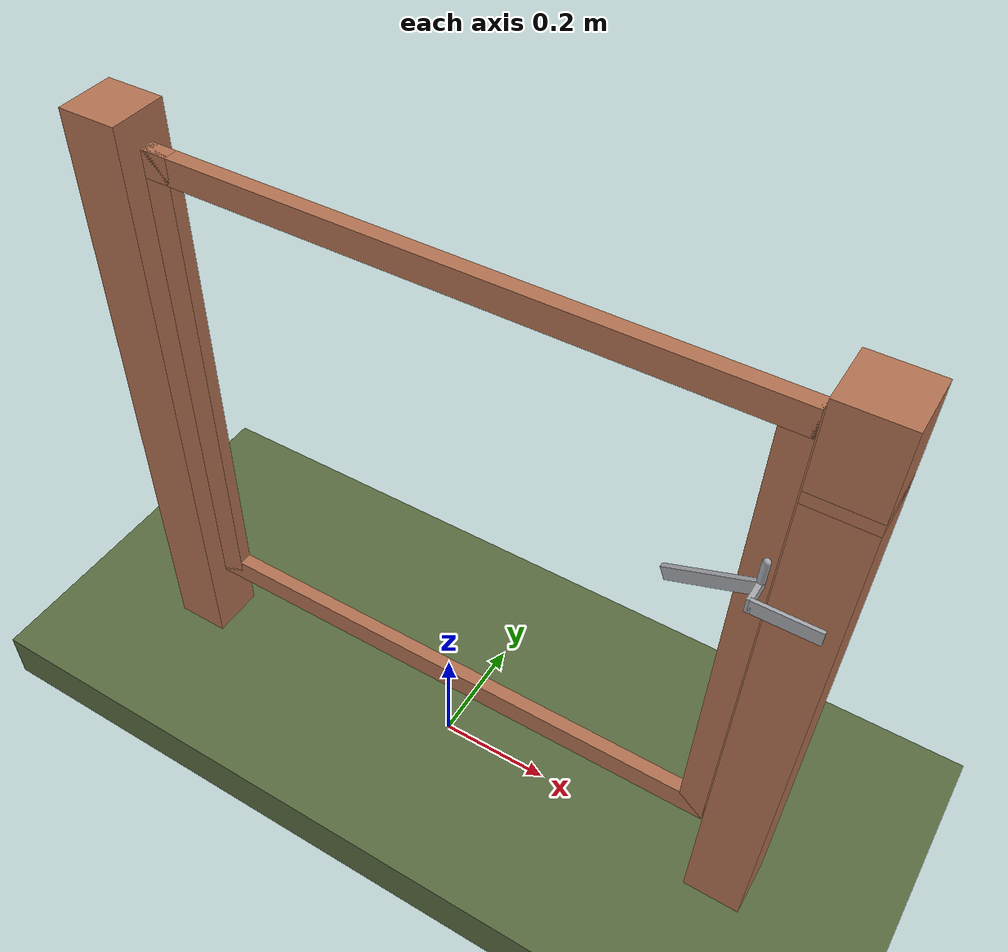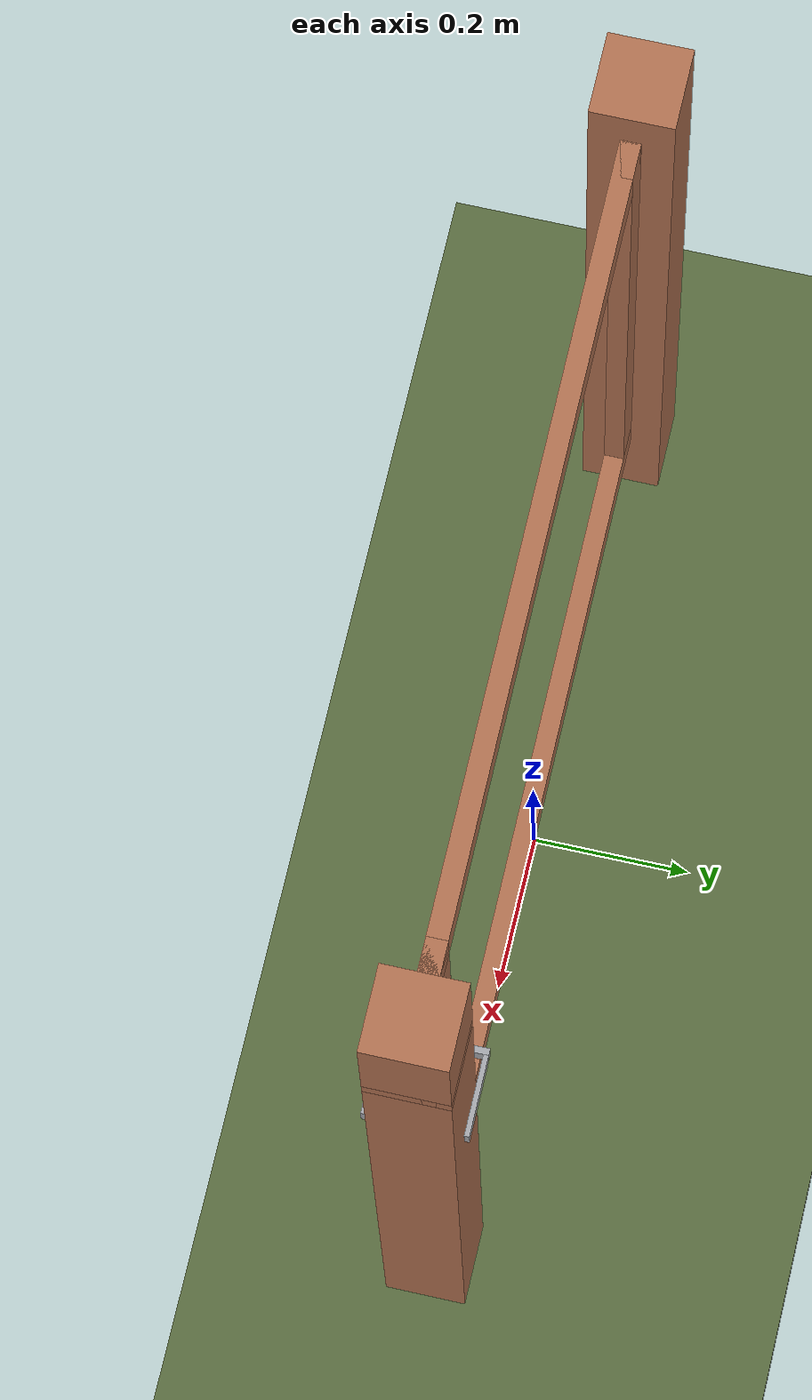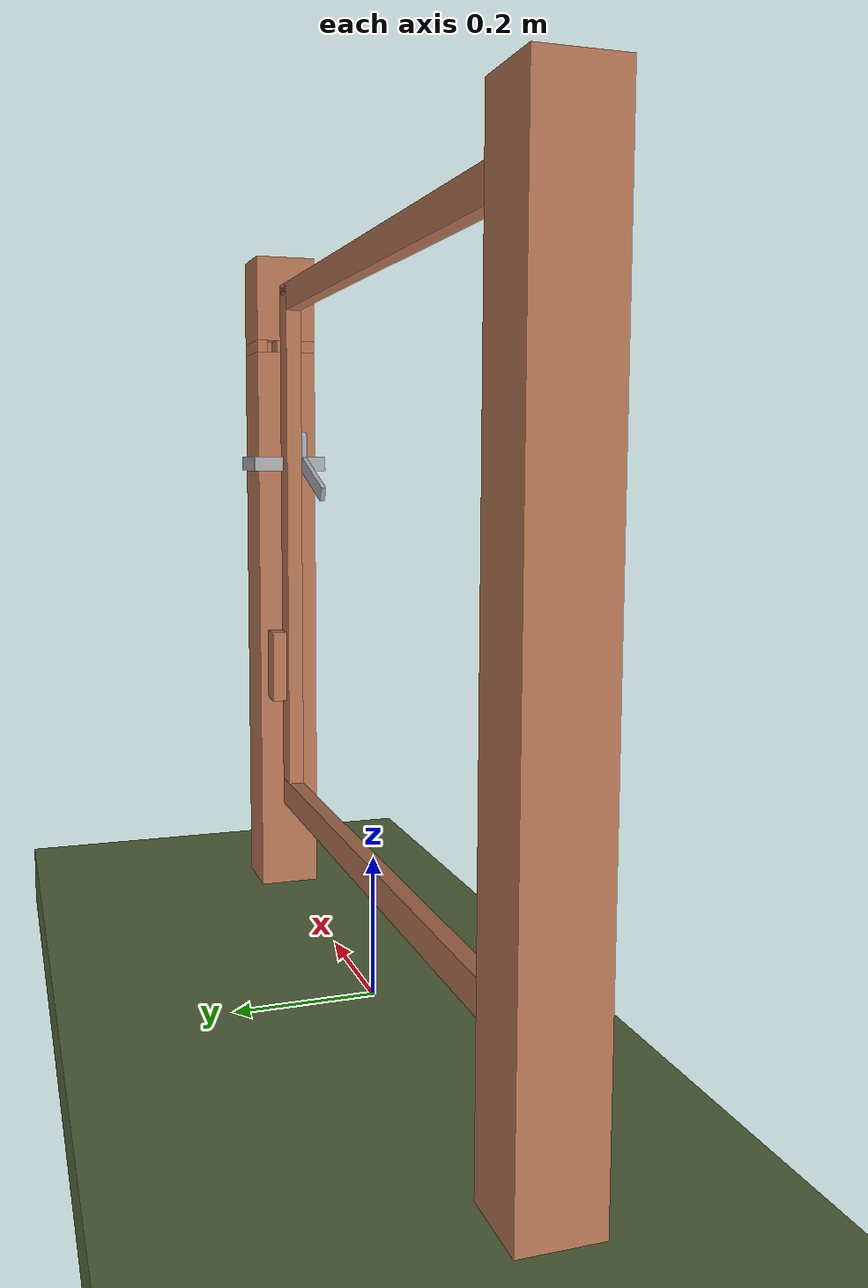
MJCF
<?xml version="1.0" ?>
<mujoco model="db0191_gate_swing_minimal">
  <compiler angle="radian" meshdir="../../hardware" texturedir="../../textures" autolimits="true" inertiafromgeom="false"/>
  <option timestep="0.002" integrator="implicitfast" cone="elliptic" impratio="10" noslip_iterations="3">
    <flag multiccd="enable"/>
  </option>
  <size memory="16M"/>
  <default>
    <geom condim="4" solref="0.005 1" solimp="0.95 0.99 0.001"/>
    <joint solreflimit="0.005 1" solimplimit="0.95 0.99 0.001"/>
    <tendon solreflimit="0.005 1"/>
    <equality solref="0.002 1"/>
  </default>
  <visual>
    <headlight ambient="0.4 0.4 0.4" diffuse="0.7 0.7 0.7" specular="0.2 0.2 0.2"/>
    <quality shadowsize="4096"/>
    <map znear="0.01" zfar="60"/>
  </visual>
  <asset>
    <material name="mat_floor" rgba="0.35 0.42 0.25 1" specular="0.2" shininess="0.15" reflectance="0"/>
    <material name="mat_wall" rgba="0.78 0.76 0.7 1" specular="0.2" shininess="0.1" reflectance="0"/>
    <material name="mat_leaf" rgba="0.7 0.45 0.32 1" specular="0.2" shininess="0.4" reflectance="0"/>
    <material name="mat_hinge" rgba="0.65 0.66 0.68 1" specular="0.74" shininess="0.5" reflectance="0.36"/>
    <material name="mat_op_steel_galvanized" rgba="0.65 0.66 0.68 1" specular="0.74" shininess="0.5" reflectance="0.36"/>
    <material name="mat_op_brass" rgba="0.85 0.66 0.3 1" specular="0.8" shininess="0.75" reflectance="0.4"/>
    <material name="mat_frame" rgba="0.7 0.45 0.32 1" specular="0.2" shininess="0.4" reflectance="0"/>
    <material name="mat_bumper_stop" rgba="0.08 0.08 0.08 1" specular="0.2" shininess="0.1" reflectance="0"/>
    <material name="mat_stop_base" rgba="0.9 0.9 0.92 1" specular="0.8" shininess="0.9" reflectance="0.4"/>
    <material name="mat_fence" rgba="0.7 0.45 0.32 1" specular="0.2" shininess="0.4" reflectance="0"/>
    <texture name="skybox" type="skybox" builtin="gradient" rgb1="0.6 0.7 0.85" rgb2="0.9 0.92 0.95" width="256" height="256"/>
  </asset>
  <worldbody>
    <light name="sun" pos="1.5 -2.5 4" dir="-0.3 0.5 -0.8" directional="true" diffuse="0.8 0.8 0.8" specular="0.3 0.3 0.3" castshadow="true"/>
    <light name="fill" pos="-1.5 2.5 3" dir="0.3 -0.5 -0.7" directional="true" diffuse="0.35 0.35 0.4" castshadow="false"/>
    <camera name="robot_view" pos="0 -1.875 0.985" xyaxes="1 0 0 0 0.26963 0.962964" fovy="52"/>
    <camera name="far_view" pos="0 1.875 0.985" xyaxes="-1 0 0 0 -0.26963 0.962964" fovy="52"/>
    <camera name="iso" pos="1.425 -1.575 1.285" xyaxes="0.741536 0.670913 0 -0.242917 0.268487 0.932151" fovy="46"/>
    <camera name="detail_handle" pos="0.666 -0.8245 1.085" xyaxes="0.97561 0.219512 0 -0.070934 0.315262 0.94635" fovy="38"/>
    <geom name="floor" type="box" size="6 6 0.05" pos="0 0 -0.05" material="mat_floor" group="0" contype="1" conaffinity="1" friction="0.8 0.005 0.0001" density="2400"/>
    <geom name="post_hinge" type="box" size="0.05 0.05 0.55" pos="-0.556 0 0.55" material="mat_frame" group="0" contype="1" conaffinity="1" friction="0.6 0.005 0.0001" density="350"/>
    <geom name="post_950_wall_n" type="box" size="0.05 0.00875 0.01" pos="0.556 0.04125 0.95" material="mat_frame" group="0" contype="1" conaffinity="1" friction="0.6 0.005 0.0001" density="350"/>
    <geom name="post_950_wall_p" type="box" size="0.05 0.03325 0.01" pos="0.556 -0.01675 0.95" material="mat_frame" group="0" contype="1" conaffinity="1" friction="0.6 0.005 0.0001" density="350"/>
    <geom name="post_950_back" type="box" size="0.029 0.008 0.01" pos="0.577 0.0245 0.95" material="mat_frame" group="0" contype="1" conaffinity="1" friction="0.6 0.005 0.0001" density="350"/>
    <geom name="post_latch_0" type="box" size="0.05 0.05 0.47" pos="0.556 0 0.47" material="mat_frame" group="0" contype="1" conaffinity="1" friction="0.6 0.005 0.0001" density="350"/>
    <geom name="post_latch_1" type="box" size="0.05 0.05 0.07" pos="0.556 0 1.03" material="mat_frame" group="0" contype="1" conaffinity="1" friction="0.6 0.005 0.0001" density="350"/>
    <geom name="gate_stop" type="box" size="0.02 0.012 0.06" pos="0.486 0.0245 0.4" material="mat_frame" group="0" contype="1" conaffinity="1" friction="0.6 0.005 0.0001" density="350"/>
    <site name="approach_point" pos="0 -1.5 0" quat="1 0 0 0" size="0.05" rgba="0.2 0.9 0.2 0.5" group="4"/>
    <site name="goal_point" pos="0 1.5 0" quat="1 0 0 0" size="0.05" rgba="0.2 0.9 0.2 0.5" group="4"/>
    <site name="door_plane_center" pos="0 0 0.46" quat="1 0 0 0" size="0.02" rgba="0.2 0.9 0.2 0.5" group="4"/>
    <body name="leaf" pos="-0.506 0 0">
      <inertial pos="0.503 0 0.6" mass="9.987453" quat="0 0 0.707107 0.707107" diaginertia="0.675002457 0.833179719 1.507141816"/>
      <joint name="leaf_hinge" type="hinge" axis="0 0 -1" pos="0.003 -0.05 0" limited="true" range="0 1.570796" damping="1.16254" frictionloss="1.096915" stiffness="5" springref="-0.8" armature="0.02"/>
      <geom name="leaf_slab_col" type="box" size="0.5 0.0125 0.45" pos="0.503 0 0.6" material="mat_leaf" group="3" contype="1" conaffinity="1" rgba="0.8 0.3 0.3 0.25" friction="0.35 0.005 0.0001" density="1"/>
      <geom name="leaf_rail_b" type="box" size="0.5 0.0125 0.0225" pos="0.503 0 0.1725" material="mat_leaf" group="1" contype="0" conaffinity="0" density="1"/>
      <geom name="leaf_rail_t" type="box" size="0.5 0.0125 0.0225" pos="0.503 0 1.0275" material="mat_leaf" group="1" contype="0" conaffinity="0" density="1"/>
      <geom name="leaf_stile_h" type="box" size="0.0225 0.0125 0.45" pos="0.0255 0 0.6" material="mat_leaf" group="1" contype="0" conaffinity="0" density="1"/>
      <geom name="leaf_stile_l" type="box" size="0.0225 0.0125 0.45" pos="0.9805 0 0.6" material="mat_leaf" group="1" contype="0" conaffinity="0" density="1"/>
      <site name="leaf_edge_mid" pos="1.003 0 0.45" quat="1 0 0 0" size="0.02" rgba="0.2 0.9 0.2 0.5" group="4"/>
      <body name="leaf_fork" pos="0.863 0 0.7">
        <inertial pos="0.125752 -0.009183 0.043882" mass="0.210369" quat="0.981159 -0.024722 -0.116685 0.151989" diaginertia="0.000361701 0.000708802 0.000997365"/>
        <joint name="leaf_fork_hinge" type="hinge" axis="0 -1 0" limited="true" range="0 1.2" damping="0.037477" frictionloss="0.006367" armature="0.0001"/>
        <geom name="leaf_fork_arm" type="box" size="0.069176 0.004 0.012" pos="0.0645 -0.0245 0.025" quat="0.982958 0 -0.183833 0" material="mat_op_steel_galvanized" group="0" contype="1" conaffinity="1" friction="0.6 0.005 0.0001" density="2500"/>
        <geom name="leaf_fork_tine_n" type="box" size="0.05 0.003 0.012" pos="0.179 -0.059 0.05" material="mat_op_steel_galvanized" group="0" contype="1" conaffinity="1" friction="0.6 0.005 0.0001" density="2500"/>
        <geom name="leaf_fork_tine_p" type="box" size="0.05 0.003 0.012" pos="0.179 0.059 0.05" material="mat_op_steel_galvanized" group="0" contype="1" conaffinity="1" friction="0.6 0.005 0.0001" density="2500"/>
        <geom name="leaf_fork_bridge" type="box" size="0.004 0.062 0.012" pos="0.129 0 0.05" material="mat_op_steel_galvanized" group="0" contype="1" conaffinity="1" friction="0.6 0.005 0.0001" density="2500"/>
        <geom name="leaf_fork_handle" type="capsule" size="0.006 0.018" pos="0.129 -0.0245 0.08" material="mat_op_steel_galvanized" group="0" contype="1" conaffinity="1" friction="0.7 0.01 0.0001" density="2500"/>
        <site name="leaf_fork_grip" pos="0.129 -0.0245 0.105" quat="1 0 0 0" size="0.012" rgba="0.2 0.9 0.2 0.5" group="4"/>
      </body>
    </body>
  </worldbody>
  <sensor>
    <jointpos name="leaf_hinge_pos" joint="leaf_hinge"/>
    <jointvel name="leaf_hinge_vel" joint="leaf_hinge"/>
    <jointpos name="leaf_fork_hinge_pos" joint="leaf_fork_hinge"/>
    <jointvel name="leaf_fork_hinge_vel" joint="leaf_fork_hinge"/>
  </sensor>
</mujoco>
